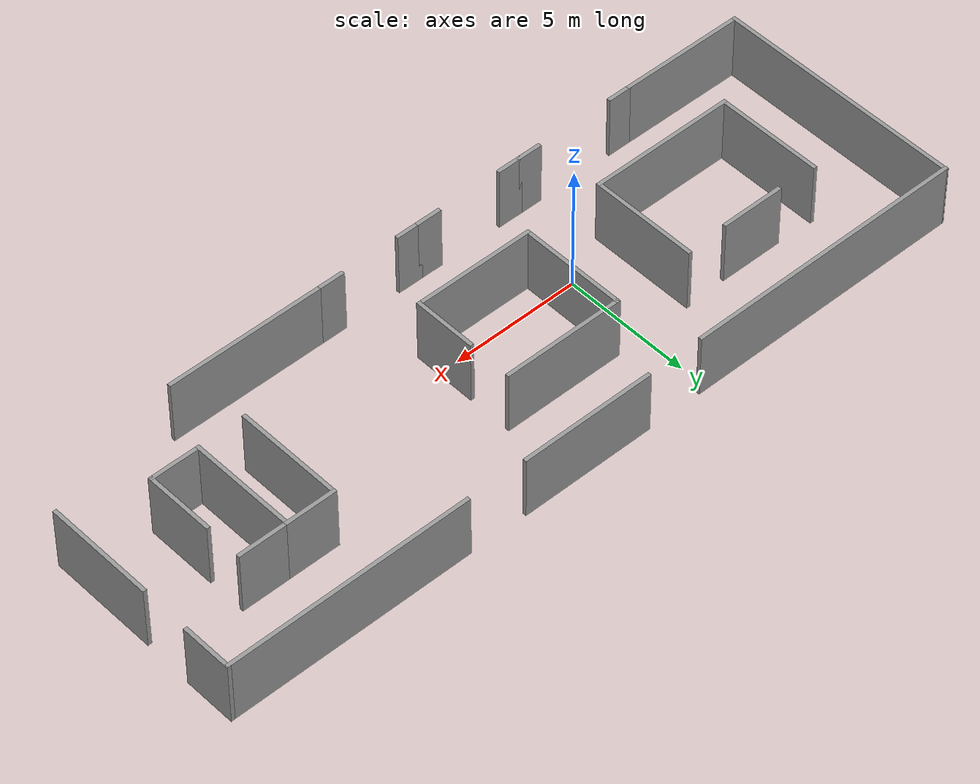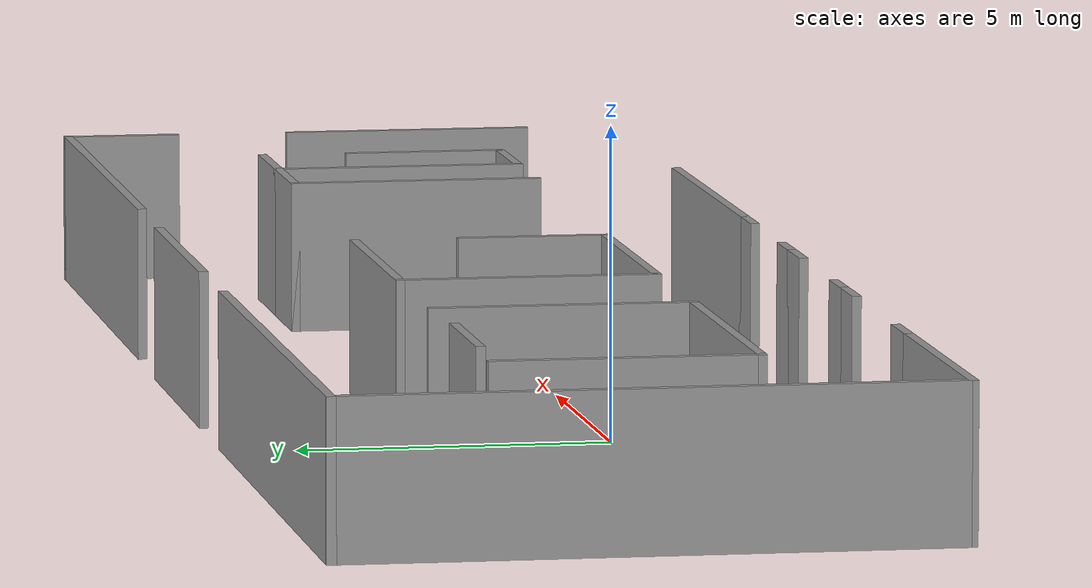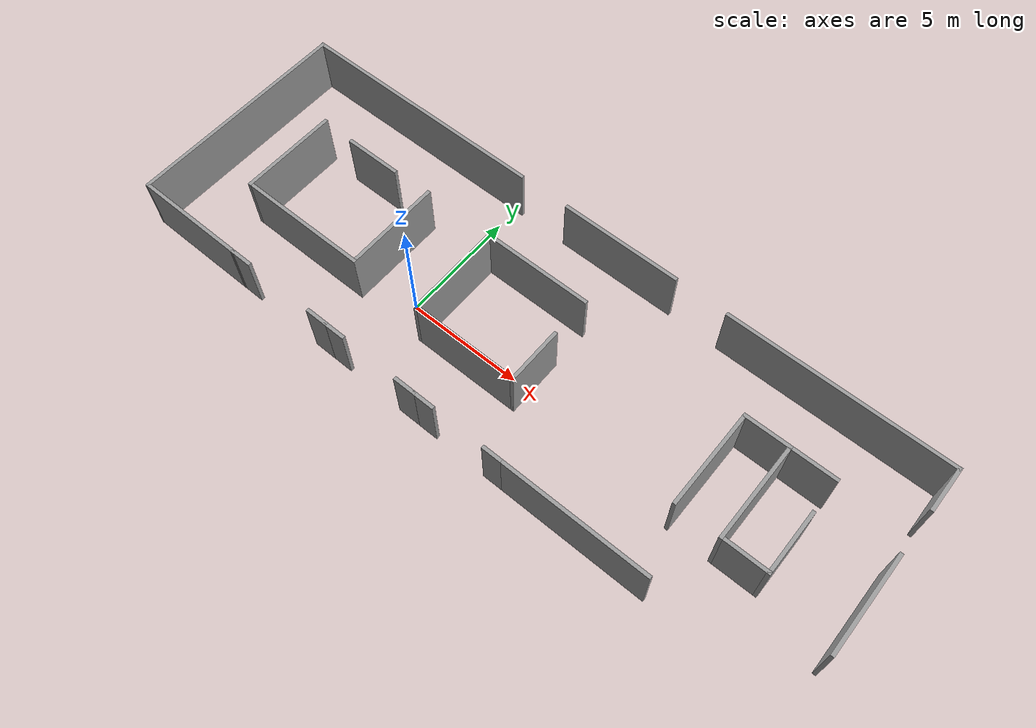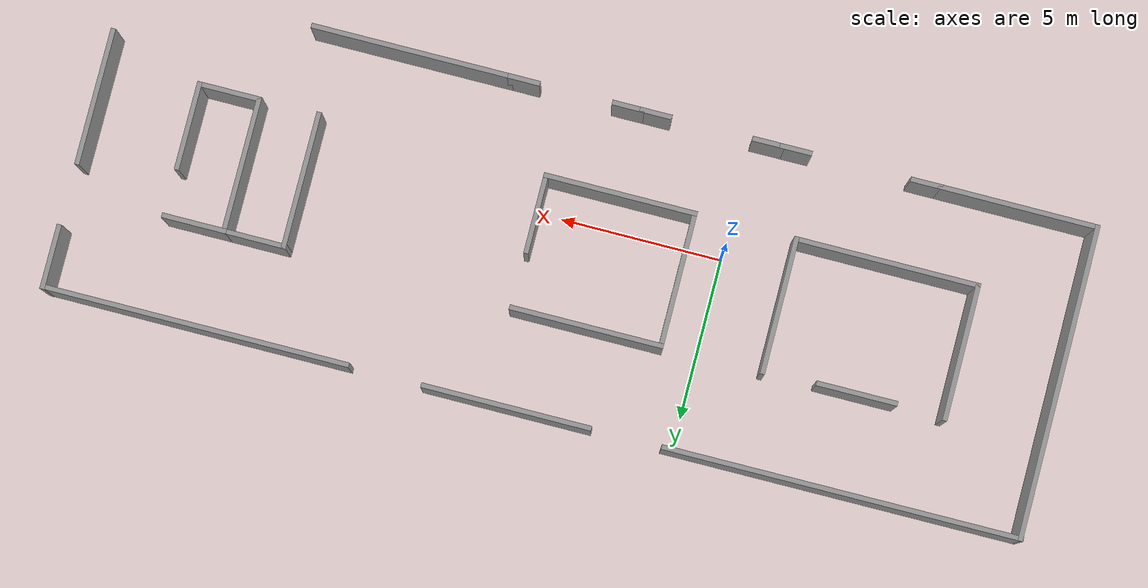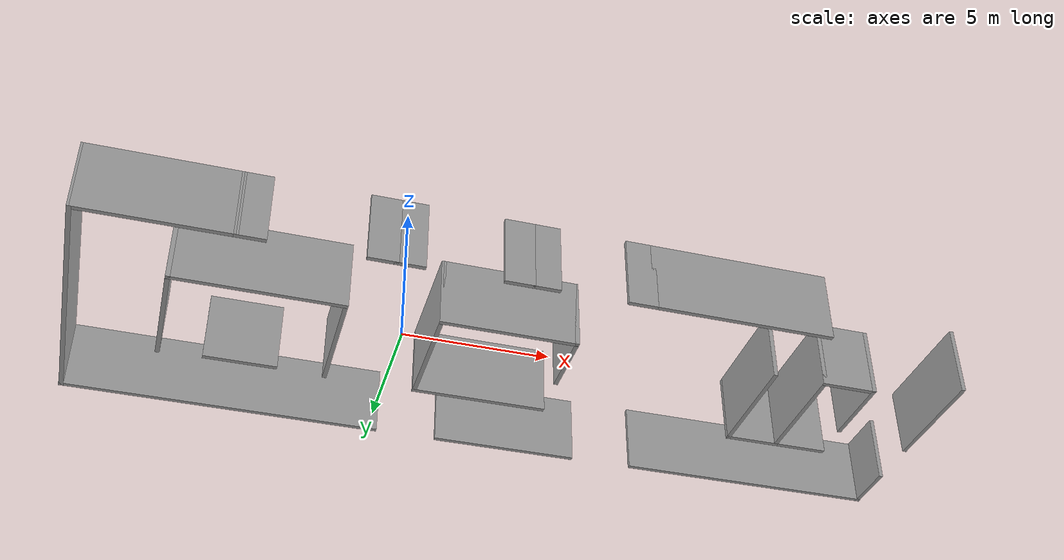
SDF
<?xml version='1.0'?>
<sdf version='1.7'>
  <model name='INB_3floor_wall'>
    <pose>4.39061 1.26301 0 0 -0 0</pose>
    <link name='Wall_0'>
      <collision name='Wall_0_Collision'>
        <geometry>
          <box>
            <size>1 0.15 2.5</size>
          </box>
        </geometry>
        <pose>0 0 1.25 0 -0 0</pose>
      </collision>
      <visual name='Wall_0_Visual'>
        <pose>0 0 1.25 0 -0 0</pose>
        <geometry>
          <box>
            <size>1 0.15 2.5</size>
          </box>
        </geometry>
        <material>
          <script>
            <uri>file://media/materials/scripts/gazebo.material</uri>
            <name>Gazebo/Grey</name>
          </script>
          <ambient>1 1 1 1</ambient>
        </material>
        <meta>
          <layer>0</layer>
        </meta>
      </visual>
      <pose>-0.545608 -4.82301 0 0 -0 0</pose>
    </link>
    <link name='Wall_11'>
      <collision name='Wall_11_Collision'>
        <geometry>
          <box>
            <size>1 0.15 2.5</size>
          </box>
        </geometry>
        <pose>0 0 1.25 0 -0 0</pose>
      </collision>
      <visual name='Wall_11_Visual'>
        <pose>0 0 1.25 0 -0 0</pose>
        <geometry>
          <box>
            <size>1 0.15 2.5</size>
          </box>
        </geometry>
        <material>
          <script>
            <uri>file://media/materials/scripts/gazebo.material</uri>
            <name>Gazebo/Grey</name>
          </script>
          <ambient>1 1 1 1</ambient>
        </material>
        <meta>
          <layer>0</layer>
        </meta>
      </visual>
      <pose>2.69063 -4.82346 0 0 -0 0</pose>
    </link>
    <link name='Wall_13'>
      <collision name='Wall_13_Collision'>
        <geometry>
          <box>
            <size>6.25 0.15 2.5</size>
          </box>
        </geometry>
        <pose>0 0 1.25 0 -0 0</pose>
      </collision>
      <visual name='Wall_13_Visual'>
        <pose>0 0 1.25 0 -0 0</pose>
        <geometry>
          <box>
            <size>6.25 0.15 2.5</size>
          </box>
        </geometry>
        <material>
          <script>
            <uri>file://media/materials/scripts/gazebo.material</uri>
            <name>Gazebo/Grey</name>
          </script>
          <ambient>1 1 1 1</ambient>
        </material>
        <meta>
          <layer>0</layer>
        </meta>
      </visual>
      <pose>6.16563 -4.82346 0 0 -0 0</pose>
    </link>
    <link name='Wall_17'>
      <collision name='Wall_17_Collision'>
        <geometry>
          <box>
            <size>1 0.15 2.5</size>
          </box>
        </geometry>
        <pose>0 0 1.25 0 -0 0</pose>
      </collision>
      <visual name='Wall_17_Visual'>
        <pose>0 0 1.25 0 -0 0</pose>
        <geometry>
          <box>
            <size>1 0.15 2.5</size>
          </box>
        </geometry>
        <material>
          <script>
            <uri>file://media/materials/scripts/gazebo.material</uri>
            <name>Gazebo/Grey</name>
          </script>
          <ambient>1 1 1 1</ambient>
        </material>
        <meta>
          <layer>0</layer>
        </meta>
      </visual>
      <pose>-9.77788 -4.80445 0 0 -0 3.14159</pose>
    </link>
    <link name='Wall_19'>
      <collision name='Wall_19_Collision'>
        <geometry>
          <box>
            <size>11.0933 0.15 2.5</size>
          </box>
        </geometry>
        <pose>0 0 1.25 0 -0 0</pose>
      </collision>
      <visual name='Wall_19_Visual'>
        <pose>0 0 1.25 0 -0 0</pose>
        <geometry>
          <box>
            <size>11.0933 0.15 2.5</size>
          </box>
        </geometry>
        <material>
          <script>
            <uri>file://media/materials/scripts/gazebo.material</uri>
            <name>Gazebo/Grey</name>
          </script>
          <ambient>1 1 1 1</ambient>
        </material>
        <meta>
          <layer>0</layer>
        </meta>
      </visual>
      <pose>-9.58193 4.81558 0 0 -0 0.001421</pose>
    </link>
    <link name='Wall_2'>
      <collision name='Wall_2_Collision'>
        <geometry>
          <box>
            <size>1 0.15 2.5</size>
          </box>
        </geometry>
        <pose>0 0 1.25 0 -0 0</pose>
      </collision>
      <visual name='Wall_2_Visual'>
        <pose>0 0 1.25 0 -0 0</pose>
        <geometry>
          <box>
            <size>1 0.15 2.5</size>
          </box>
        </geometry>
        <material>
          <script>
            <uri>file://media/materials/scripts/gazebo.material</uri>
            <name>Gazebo/Grey</name>
          </script>
          <ambient>1 1 1 1</ambient>
        </material>
        <meta>
          <layer>0</layer>
        </meta>
      </visual>
      <pose>-1.39561 -4.82301 0 0 -0 3.14159</pose>
    </link>
    <link name='Wall_21'>
      <collision name='Wall_21_Collision'>
        <geometry>
          <box>
            <size>5.25 0.15 2.5</size>
          </box>
        </geometry>
        <pose>0 0 1.25 0 -0 0</pose>
      </collision>
      <visual name='Wall_21_Visual'>
        <pose>0 0 1.25 0 -0 0</pose>
        <geometry>
          <box>
            <size>5.25 0.15 2.5</size>
          </box>
        </geometry>
        <material>
          <script>
            <uri>file://media/materials/scripts/gazebo.material</uri>
            <name>Gazebo/Grey</name>
          </script>
          <ambient>1 1 1 1</ambient>
        </material>
        <meta>
          <layer>0</layer>
        </meta>
      </visual>
      <pose>0.743042 4.82261 0 0 -0 0</pose>
    </link>
    <link name='Wall_23'>
      <collision name='Wall_23_Collision'>
        <geometry>
          <box>
            <size>9.75 0.15 2.5</size>
          </box>
        </geometry>
        <pose>0 0 1.25 0 -0 0</pose>
      </collision>
      <visual name='Wall_23_Visual'>
        <pose>0 0 1.25 0 -0 0</pose>
        <geometry>
          <box>
            <size>9.75 0.15 2.5</size>
          </box>
        </geometry>
        <material>
          <script>
            <uri>file://media/materials/scripts/gazebo.material</uri>
            <name>Gazebo/Grey</name>
          </script>
          <ambient>1 1 1 1</ambient>
        </material>
        <meta>
          <layer>0</layer>
        </meta>
      </visual>
      <pose>-15.038 0.007803 0 0 -0 -1.5708</pose>
    </link>
    <link name='Wall_25'>
      <collision name='Wall_25_Collision'>
        <geometry>
          <box>
            <size>4.98515 0.15 2.5</size>
          </box>
        </geometry>
        <pose>0 0 1.25 0 -0 0</pose>
      </collision>
      <visual name='Wall_25_Visual'>
        <pose>0 0 1.25 0 -0 0</pose>
        <geometry>
          <box>
            <size>4.98515 0.15 2.5</size>
          </box>
        </geometry>
        <material>
          <script>
            <uri>file://media/materials/scripts/gazebo.material</uri>
            <name>Gazebo/Grey</name>
          </script>
          <ambient>1 1 1 1</ambient>
        </material>
        <meta>
          <layer>0</layer>
        </meta>
      </visual>
      <pose>-12.6205 -4.79832 0 0 -0 -0.002534</pose>
    </link>
    <link name='Wall_27'>
      <collision name='Wall_27_Collision'>
        <geometry>
          <box>
            <size>9.5 0.15 2.5</size>
          </box>
        </geometry>
        <pose>0 0 1.25 0 -0 0</pose>
      </collision>
      <visual name='Wall_27_Visual'>
        <pose>0 0 1.25 0 -0 0</pose>
        <geometry>
          <box>
            <size>9.5 0.15 2.5</size>
          </box>
        </geometry>
        <material>
          <script>
            <uri>file://media/materials/scripts/gazebo.material</uri>
            <name>Gazebo/Grey</name>
          </script>
          <ambient>1 1 1 1</ambient>
        </material>
        <meta>
          <layer>0</layer>
        </meta>
      </visual>
      <pose>10.3448 4.79208 0 0 -0 0</pose>
    </link>
    <link name='Wall_29'>
      <collision name='Wall_29_Collision'>
        <geometry>
          <box>
            <size>4.75 0.15 2.5</size>
          </box>
        </geometry>
        <pose>0 0 1.25 0 -0 0</pose>
      </collision>
      <visual name='Wall_29_Visual'>
        <pose>0 0 1.25 0 -0 0</pose>
        <geometry>
          <box>
            <size>4.75 0.15 2.5</size>
          </box>
        </geometry>
        <material>
          <script>
            <uri>file://media/materials/scripts/gazebo.material</uri>
            <name>Gazebo/Grey</name>
          </script>
          <ambient>1 1 1 1</ambient>
        </material>
        <meta>
          <layer>0</layer>
        </meta>
      </visual>
      <pose>-0.97531 1.90989 0 0 -0 3.14159</pose>
    </link>
    <link name='Wall_32'>
      <collision name='Wall_32_Collision'>
        <geometry>
          <box>
            <size>4.25 0.15 2.5</size>
          </box>
        </geometry>
        <pose>0 0 1.25 0 -0 0</pose>
      </collision>
      <visual name='Wall_32_Visual'>
        <pose>0 0 1.25 0 -0 0</pose>
        <geometry>
          <box>
            <size>4.25 0.15 2.5</size>
          </box>
        </geometry>
        <material>
          <script>
            <uri>file://media/materials/scripts/gazebo.material</uri>
            <name>Gazebo/Grey</name>
          </script>
          <ambient>1 1 1 1</ambient>
        </material>
        <meta>
          <layer>0</layer>
        </meta>
      </visual>
      <pose>-3.27531 -0.14011 0 0 -0 -1.5708</pose>
    </link>
    <link name='Wall_33'>
      <collision name='Wall_33_Collision'>
        <geometry>
          <box>
            <size>4.75 0.15 2.5</size>
          </box>
        </geometry>
        <pose>0 0 1.25 0 -0 0</pose>
      </collision>
      <visual name='Wall_33_Visual'>
        <pose>0 0 1.25 0 -0 0</pose>
        <geometry>
          <box>
            <size>4.75 0.15 2.5</size>
          </box>
        </geometry>
        <material>
          <script>
            <uri>file://media/materials/scripts/gazebo.material</uri>
            <name>Gazebo/Grey</name>
          </script>
          <ambient>1 1 1 1</ambient>
        </material>
        <meta>
          <layer>0</layer>
        </meta>
      </visual>
      <pose>-0.97531 -2.19011 0 0 -0 0</pose>
    </link>
    <link name='Wall_34'>
      <collision name='Wall_34_Collision'>
        <geometry>
          <box>
            <size>2.5 0.15 2.5</size>
          </box>
        </geometry>
        <pose>0 0 1.25 0 -0 0</pose>
      </collision>
      <visual name='Wall_34_Visual'>
        <pose>0 0 1.25 0 -0 0</pose>
        <geometry>
          <box>
            <size>2.5 0.15 2.5</size>
          </box>
        </geometry>
        <material>
          <script>
            <uri>file://media/materials/scripts/gazebo.material</uri>
            <name>Gazebo/Grey</name>
          </script>
          <ambient>1 1 1 1</ambient>
        </material>
        <meta>
          <layer>0</layer>
        </meta>
      </visual>
      <pose>1.32469 -1.01511 0 0 -0 1.5708</pose>
    </link>
    <link name='Wall_36'>
      <collision name='Wall_36_Collision'>
        <geometry>
          <box>
            <size>4.25 0.15 2.5</size>
          </box>
        </geometry>
        <pose>0 0 1.25 0 -0 0</pose>
      </collision>
      <visual name='Wall_36_Visual'>
        <pose>0 0 1.25 0 -0 0</pose>
        <geometry>
          <box>
            <size>4.25 0.15 2.5</size>
          </box>
        </geometry>
        <material>
          <script>
            <uri>file://media/materials/scripts/gazebo.material</uri>
            <name>Gazebo/Grey</name>
          </script>
          <ambient>1 1 1 1</ambient>
        </material>
        <meta>
          <layer>0</layer>
        </meta>
      </visual>
      <pose>-6.40482 -0.152779 0 0 -0 1.5708</pose>
    </link>
    <link name='Wall_38'>
      <collision name='Wall_38_Collision'>
        <geometry>
          <box>
            <size>5.75 0.15 2.5</size>
          </box>
        </geometry>
        <pose>0 0 1.25 0 -0 0</pose>
      </collision>
      <visual name='Wall_38_Visual'>
        <pose>0 0 1.25 0 -0 0</pose>
        <geometry>
          <box>
            <size>5.75 0.15 2.5</size>
          </box>
        </geometry>
        <material>
          <script>
            <uri>file://media/materials/scripts/gazebo.material</uri>
            <name>Gazebo/Grey</name>
          </script>
          <ambient>1 1 1 1</ambient>
        </material>
        <meta>
          <layer>0</layer>
        </meta>
      </visual>
      <pose>-9.20482 -2.20278 0 0 -0 3.14159</pose>
    </link>
    <link name='Wall_39'>
      <collision name='Wall_39_Collision'>
        <geometry>
          <box>
            <size>4.25 0.15 2.5</size>
          </box>
        </geometry>
        <pose>0 0 1.25 0 -0 0</pose>
      </collision>
      <visual name='Wall_39_Visual'>
        <pose>0 0 1.25 0 -0 0</pose>
        <geometry>
          <box>
            <size>4.25 0.15 2.5</size>
          </box>
        </geometry>
        <material>
          <script>
            <uri>file://media/materials/scripts/gazebo.material</uri>
            <name>Gazebo/Grey</name>
          </script>
          <ambient>1 1 1 1</ambient>
        </material>
        <meta>
          <layer>0</layer>
        </meta>
      </visual>
      <pose>-12.0048 -0.152779 0 0 -0 1.5708</pose>
    </link>
    <link name='Wall_4'>
      <collision name='Wall_4_Collision'>
        <geometry>
          <box>
            <size>1 0.15 2.5</size>
          </box>
        </geometry>
        <pose>0 0 1.25 0 -0 0</pose>
      </collision>
      <visual name='Wall_4_Visual'>
        <pose>0 0 1.25 0 -0 0</pose>
        <geometry>
          <box>
            <size>1 0.15 2.5</size>
          </box>
        </geometry>
        <material>
          <script>
            <uri>file://media/materials/scripts/gazebo.material</uri>
            <name>Gazebo/Grey</name>
          </script>
          <ambient>1 1 1 1</ambient>
        </material>
        <meta>
          <layer>0</layer>
        </meta>
      </visual>
      <pose>-4.88561 -4.81301 0 0 -0 3.14159</pose>
    </link>
    <link name='Wall_41'>
      <collision name='Wall_41_Collision'>
        <geometry>
          <box>
            <size>2.5 0.15 2.5</size>
          </box>
        </geometry>
        <pose>0 0 1.25 0 -0 0</pose>
      </collision>
      <visual name='Wall_41_Visual'>
        <pose>0 0 1.25 0 -0 0</pose>
        <geometry>
          <box>
            <size>2.5 0.15 2.5</size>
          </box>
        </geometry>
        <material>
          <script>
            <uri>file://media/materials/scripts/gazebo.material</uri>
            <name>Gazebo/Grey</name>
          </script>
          <ambient>1 1 1 1</ambient>
        </material>
        <meta>
          <layer>0</layer>
        </meta>
      </visual>
      <pose>-9.28531 1.83053 0 0 -0 0</pose>
    </link>
    <link name='Wall_43'>
      <collision name='Wall_43_Collision'>
        <geometry>
          <box>
            <size>2 0.15 2.5</size>
          </box>
        </geometry>
        <pose>0 0 1.25 0 -0 0</pose>
      </collision>
      <visual name='Wall_43_Visual'>
        <pose>0 0 1.25 0 -0 0</pose>
        <geometry>
          <box>
            <size>2 0.15 2.5</size>
          </box>
        </geometry>
        <material>
          <script>
            <uri>file://media/materials/scripts/gazebo.material</uri>
            <name>Gazebo/Grey</name>
          </script>
          <ambient>1 1 1 1</ambient>
        </material>
        <meta>
          <layer>0</layer>
        </meta>
      </visual>
      <pose>15.0537 3.87227 0 0 -0 -1.5708</pose>
    </link>
    <link name='Wall_45'>
      <collision name='Wall_45_Collision'>
        <geometry>
          <box>
            <size>4.25 0.15 2.5</size>
          </box>
        </geometry>
        <pose>0 0 1.25 0 -0 0</pose>
      </collision>
      <visual name='Wall_45_Visual'>
        <pose>0 0 1.25 0 -0 0</pose>
        <geometry>
          <box>
            <size>4.25 0.15 2.5</size>
          </box>
        </geometry>
        <material>
          <script>
            <uri>file://media/materials/scripts/gazebo.material</uri>
            <name>Gazebo/Grey</name>
          </script>
          <ambient>1 1 1 1</ambient>
        </material>
        <meta>
          <layer>0</layer>
        </meta>
      </visual>
      <pose>15.0222 -1.12537 0 0 -0 -1.5708</pose>
    </link>
    <link name='Wall_47'>
      <collision name='Wall_47_Collision'>
        <geometry>
          <box>
            <size>4.25 0.15 2.5</size>
          </box>
        </geometry>
        <pose>0 0 1.25 0 -0 0</pose>
      </collision>
      <visual name='Wall_47_Visual'>
        <pose>0 0 1.25 0 -0 0</pose>
        <geometry>
          <box>
            <size>4.25 0.15 2.5</size>
          </box>
        </geometry>
        <material>
          <script>
            <uri>file://media/materials/scripts/gazebo.material</uri>
            <name>Gazebo/Grey</name>
          </script>
          <ambient>1 1 1 1</ambient>
        </material>
        <meta>
          <layer>0</layer>
        </meta>
      </visual>
      <pose>8.38922 -0.217993 0 0 -0 -1.5708</pose>
    </link>
    <link name='Wall_49'>
      <collision name='Wall_49_Collision'>
        <geometry>
          <box>
            <size>2 0.15 2.5</size>
          </box>
        </geometry>
        <pose>0 0 1.25 0 -0 0</pose>
      </collision>
      <visual name='Wall_49_Visual'>
        <pose>0 0 1.25 0 -0 0</pose>
        <geometry>
          <box>
            <size>2 0.15 2.5</size>
          </box>
        </geometry>
        <material>
          <script>
            <uri>file://media/materials/scripts/gazebo.material</uri>
            <name>Gazebo/Grey</name>
          </script>
          <ambient>1 1 1 1</ambient>
        </material>
        <meta>
          <layer>0</layer>
        </meta>
      </visual>
      <pose>9.31422 1.83201 0 0 -0 0</pose>
    </link>
    <link name='Wall_50'>
      <collision name='Wall_50_Collision'>
        <geometry>
          <box>
            <size>4.25 0.15 2.5</size>
          </box>
        </geometry>
        <pose>0 0 1.25 0 -0 0</pose>
      </collision>
      <visual name='Wall_50_Visual'>
        <pose>0 0 1.25 0 -0 0</pose>
        <geometry>
          <box>
            <size>4.25 0.15 2.5</size>
          </box>
        </geometry>
        <material>
          <script>
            <uri>file://media/materials/scripts/gazebo.material</uri>
            <name>Gazebo/Grey</name>
          </script>
          <ambient>1 1 1 1</ambient>
        </material>
        <meta>
          <layer>0</layer>
        </meta>
      </visual>
      <pose>10.2392 -0.217993 0 0 -0 -1.5708</pose>
    </link>
    <link name='Wall_51'>
      <collision name='Wall_51_Collision'>
        <geometry>
          <box>
            <size>2 0.15 2.5</size>
          </box>
        </geometry>
        <pose>0 0 1.25 0 -0 0</pose>
      </collision>
      <visual name='Wall_51_Visual'>
        <pose>0 0 1.25 0 -0 0</pose>
        <geometry>
          <box>
            <size>2 0.15 2.5</size>
          </box>
        </geometry>
        <material>
          <script>
            <uri>file://media/materials/scripts/gazebo.material</uri>
            <name>Gazebo/Grey</name>
          </script>
          <ambient>1 1 1 1</ambient>
        </material>
        <meta>
          <layer>0</layer>
        </meta>
      </visual>
      <pose>11.1642 -2.26799 0 0 -0 0</pose>
    </link>
    <link name='Wall_52'>
      <collision name='Wall_52_Collision'>
        <geometry>
          <box>
            <size>2.75 0.15 2.5</size>
          </box>
        </geometry>
        <pose>0 0 1.25 0 -0 0</pose>
      </collision>
      <visual name='Wall_52_Visual'>
        <pose>0 0 1.25 0 -0 0</pose>
        <geometry>
          <box>
            <size>2.75 0.15 2.5</size>
          </box>
        </geometry>
        <material>
          <script>
            <uri>file://media/materials/scripts/gazebo.material</uri>
            <name>Gazebo/Grey</name>
          </script>
          <ambient>1 1 1 1</ambient>
        </material>
        <meta>
          <layer>0</layer>
        </meta>
      </visual>
      <pose>12.0892 -0.967993 0 0 -0 1.5708</pose>
    </link>
    <link name='Wall_54'>
      <collision name='Wall_54_Collision'>
        <geometry>
          <box>
            <size>2 0.15 2.5</size>
          </box>
        </geometry>
        <pose>0 0 1.25 0 -0 0</pose>
      </collision>
      <visual name='Wall_54_Visual'>
        <pose>0 0 1.25 0 -0 0</pose>
        <geometry>
          <box>
            <size>2 0.15 2.5</size>
          </box>
        </geometry>
        <material>
          <script>
            <uri>file://media/materials/scripts/gazebo.material</uri>
            <name>Gazebo/Grey</name>
          </script>
          <ambient>1 1 1 1</ambient>
        </material>
        <meta>
          <layer>0</layer>
        </meta>
      </visual>
      <pose>11.1642 1.83201 0 0 -0 0</pose>
    </link>
    <link name='Wall_7'>
      <collision name='Wall_7_Collision'>
        <geometry>
          <box>
            <size>1 0.15 2.5</size>
          </box>
        </geometry>
        <pose>0 0 1.25 0 -0 0</pose>
      </collision>
      <visual name='Wall_7_Visual'>
        <pose>0 0 1.25 0 -0 0</pose>
        <geometry>
          <box>
            <size>1 0.15 2.5</size>
          </box>
        </geometry>
        <material>
          <script>
            <uri>file://media/materials/scripts/gazebo.material</uri>
            <name>Gazebo/Grey</name>
          </script>
          <ambient>1 1 1 1</ambient>
        </material>
        <meta>
          <layer>0</layer>
        </meta>
      </visual>
      <pose>-5.73561 -4.81301 0 0 -0 3.14159</pose>
    </link>
    <static>1</static>
  </model>
</sdf>
